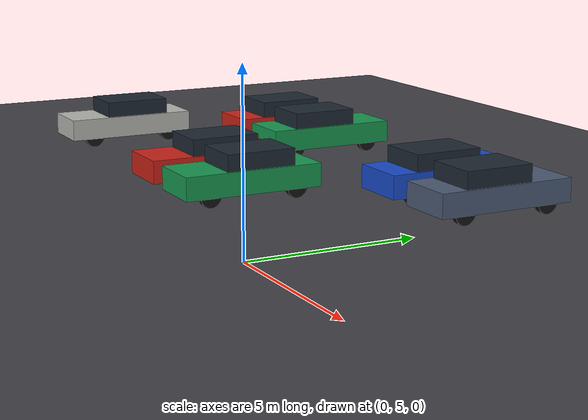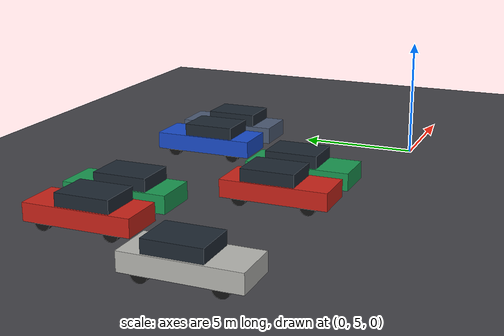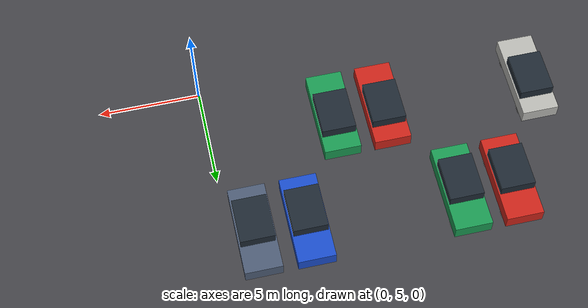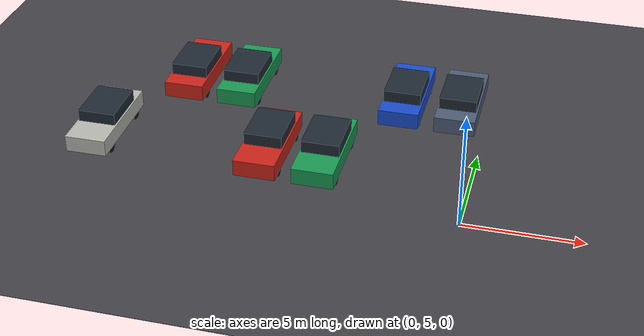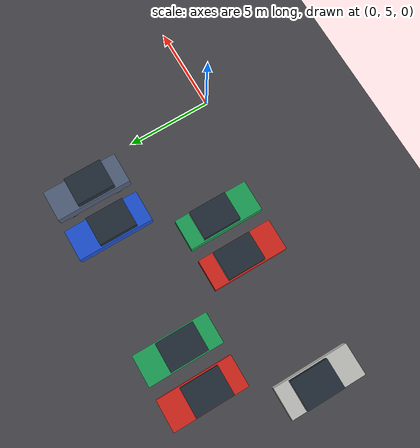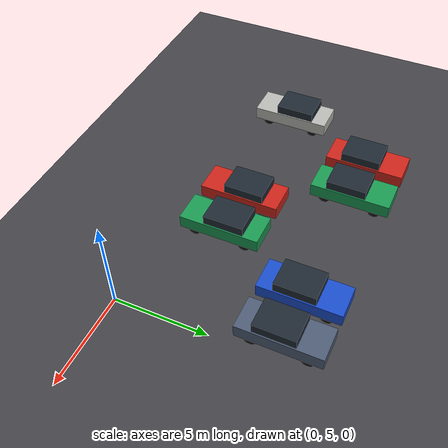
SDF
<sdf version="1.10">
 <world name="parking_lot">
  <model name="ground">
   <static>true</static>
   <link name="link">
    <collision name="c">
     <geometry><plane><normal>0 0 1</normal><size>78.0 70.1</size></plane></geometry>
     <surface><friction><ode><mu>1.0</mu><mu2>1.0</mu2></ode></friction></surface>
    </collision>
    <visual name="floor_vis">
     <pose>0.0000 0.0000 -0.0100 0 0 0.000000</pose>
     <geometry><box><size>58.0000 50.1000 0.0200</size></box></geometry>
     <material>
      <ambient>0.22 0.22 0.24 1</ambient>
      <diffuse>0.26 0.26 0.28 1</diffuse>
      <specular>0.1 0.1 0.1 1</specular>
     </material>
    </visual>
   </link>
  </model>
  <model name="parked_car_C01">
   <static>true</static>
   <pose>-16.2500 7.9500 0 0 0 -1.570796</pose>
   <link name="link">
    <collision name="body_col">
     <pose>0.0000 0.0000 0.6300 0 0 0.000000</pose>
     <geometry><box><size>4.4000 1.8000 0.7200</size></box></geometry>
    </collision>
    <visual name="body_vis">
     <pose>0.0000 0.0000 0.6300 0 0 0.000000</pose>
     <geometry><box><size>4.4000 1.8000 0.7200</size></box></geometry>
     <material>
      <ambient>0.55 0.55 0.53 1</ambient>
      <diffuse>0.72 0.72 0.70 1</diffuse>
      <specular>0.1 0.1 0.1 1</specular>
     </material>
    </visual>
    <collision name="cabin_col">
     <pose>-0.2500 0.0000 1.2500 0 0 0.000000</pose>
     <geometry><box><size>2.2000 1.6560 0.5200</size></box></geometry>
    </collision>
    <visual name="cabin_vis">
     <pose>-0.2500 0.0000 1.2500 0 0 0.000000</pose>
     <geometry><box><size>2.2000 1.6560 0.5200</size></box></geometry>
     <material>
      <ambient>0.06 0.08 0.10 1</ambient>
      <diffuse>0.12 0.16 0.20 1</diffuse>
      <specular>0.1 0.1 0.1 1</specular>
     </material>
    </visual>
    <collision name="w_fl_col">
     <pose>1.4080 0.7560 0.3300 1.5708 0 0</pose>
     <geometry><cylinder><radius>0.3300</radius><length>0.2200</length></cylinder></geometry>
    </collision>
    <visual name="w_fl_vis">
     <pose>1.4080 0.7560 0.3300 1.5708 0 0</pose>
     <geometry><cylinder><radius>0.3300</radius><length>0.2200</length></cylinder></geometry>
     <material>
      <ambient>0.03 0.03 0.03 1</ambient>
      <diffuse>0.08 0.08 0.08 1</diffuse>
      <specular>0.1 0.1 0.1 1</specular>
     </material>
    </visual>
    <collision name="w_fr_col">
     <pose>1.4080 -0.7560 0.3300 1.5708 0 0</pose>
     <geometry><cylinder><radius>0.3300</radius><length>0.2200</length></cylinder></geometry>
    </collision>
    <visual name="w_fr_vis">
     <pose>1.4080 -0.7560 0.3300 1.5708 0 0</pose>
     <geometry><cylinder><radius>0.3300</radius><length>0.2200</length></cylinder></geometry>
     <material>
      <ambient>0.03 0.03 0.03 1</ambient>
      <diffuse>0.08 0.08 0.08 1</diffuse>
      <specular>0.1 0.1 0.1 1</specular>
     </material>
    </visual>
    <collision name="w_rl_col">
     <pose>-1.4080 0.7560 0.3300 1.5708 0 0</pose>
     <geometry><cylinder><radius>0.3300</radius><length>0.2200</length></cylinder></geometry>
    </collision>
    <visual name="w_rl_vis">
     <pose>-1.4080 0.7560 0.3300 1.5708 0 0</pose>
     <geometry><cylinder><radius>0.3300</radius><length>0.2200</length></cylinder></geometry>
     <material>
      <ambient>0.03 0.03 0.03 1</ambient>
      <diffuse>0.08 0.08 0.08 1</diffuse>
      <specular>0.1 0.1 0.1 1</specular>
     </material>
    </visual>
    <collision name="w_rr_col">
     <pose>-1.4080 -0.7560 0.3300 1.5708 0 0</pose>
     <geometry><cylinder><radius>0.3300</radius><length>0.2200</length></cylinder></geometry>
    </collision>
    <visual name="w_rr_vis">
     <pose>-1.4080 -0.7560 0.3300 1.5708 0 0</pose>
     <geometry><cylinder><radius>0.3300</radius><length>0.2200</length></cylinder></geometry>
     <material>
      <ambient>0.03 0.03 0.03 1</ambient>
      <diffuse>0.08 0.08 0.08 1</diffuse>
      <specular>0.1 0.1 0.1 1</specular>
     </material>
    </visual>
   </link>
  </model>
  <model name="parked_car_C04">
   <static>true</static>
   <pose>-8.7500 7.9500 0 0 0 -1.570796</pose>
   <link name="link">
    <collision name="body_col">
     <pose>0.0000 0.0000 0.6300 0 0 0.000000</pose>
     <geometry><box><size>4.4000 1.8000 0.7200</size></box></geometry>
    </collision>
    <visual name="body_vis">
     <pose>0.0000 0.0000 0.6300 0 0 0.000000</pose>
     <geometry><box><size>4.4000 1.8000 0.7200</size></box></geometry>
     <material>
      <ambient>0.55 0.08 0.06 1</ambient>
      <diffuse>0.80 0.14 0.10 1</diffuse>
      <specular>0.1 0.1 0.1 1</specular>
     </material>
    </visual>
    <collision name="cabin_col">
     <pose>-0.2500 0.0000 1.2500 0 0 0.000000</pose>
     <geometry><box><size>2.2000 1.6560 0.5200</size></box></geometry>
    </collision>
    <visual name="cabin_vis">
     <pose>-0.2500 0.0000 1.2500 0 0 0.000000</pose>
     <geometry><box><size>2.2000 1.6560 0.5200</size></box></geometry>
     <material>
      <ambient>0.06 0.08 0.10 1</ambient>
      <diffuse>0.12 0.16 0.20 1</diffuse>
      <specular>0.1 0.1 0.1 1</specular>
     </material>
    </visual>
    <collision name="w_fl_col">
     <pose>1.4080 0.7560 0.3300 1.5708 0 0</pose>
     <geometry><cylinder><radius>0.3300</radius><length>0.2200</length></cylinder></geometry>
    </collision>
    <visual name="w_fl_vis">
     <pose>1.4080 0.7560 0.3300 1.5708 0 0</pose>
     <geometry><cylinder><radius>0.3300</radius><length>0.2200</length></cylinder></geometry>
     <material>
      <ambient>0.03 0.03 0.03 1</ambient>
      <diffuse>0.08 0.08 0.08 1</diffuse>
      <specular>0.1 0.1 0.1 1</specular>
     </material>
    </visual>
    <collision name="w_fr_col">
     <pose>1.4080 -0.7560 0.3300 1.5708 0 0</pose>
     <geometry><cylinder><radius>0.3300</radius><length>0.2200</length></cylinder></geometry>
    </collision>
    <visual name="w_fr_vis">
     <pose>1.4080 -0.7560 0.3300 1.5708 0 0</pose>
     <geometry><cylinder><radius>0.3300</radius><length>0.2200</length></cylinder></geometry>
     <material>
      <ambient>0.03 0.03 0.03 1</ambient>
      <diffuse>0.08 0.08 0.08 1</diffuse>
      <specular>0.1 0.1 0.1 1</specular>
     </material>
    </visual>
    <collision name="w_rl_col">
     <pose>-1.4080 0.7560 0.3300 1.5708 0 0</pose>
     <geometry><cylinder><radius>0.3300</radius><length>0.2200</length></cylinder></geometry>
    </collision>
    <visual name="w_rl_vis">
     <pose>-1.4080 0.7560 0.3300 1.5708 0 0</pose>
     <geometry><cylinder><radius>0.3300</radius><length>0.2200</length></cylinder></geometry>
     <material>
      <ambient>0.03 0.03 0.03 1</ambient>
      <diffuse>0.08 0.08 0.08 1</diffuse>
      <specular>0.1 0.1 0.1 1</specular>
     </material>
    </visual>
    <collision name="w_rr_col">
     <pose>-1.4080 -0.7560 0.3300 1.5708 0 0</pose>
     <geometry><cylinder><radius>0.3300</radius><length>0.2200</length></cylinder></geometry>
    </collision>
    <visual name="w_rr_vis">
     <pose>-1.4080 -0.7560 0.3300 1.5708 0 0</pose>
     <geometry><cylinder><radius>0.3300</radius><length>0.2200</length></cylinder></geometry>
     <material>
      <ambient>0.03 0.03 0.03 1</ambient>
      <diffuse>0.08 0.08 0.08 1</diffuse>
      <specular>0.1 0.1 0.1 1</specular>
     </material>
    </visual>
   </link>
  </model>
  <model name="parked_car_C05">
   <static>true</static>
   <pose>-6.2500 7.9500 0 0 0 -1.570796</pose>
   <link name="link">
    <collision name="body_col">
     <pose>0.0000 0.0000 0.6300 0 0 0.000000</pose>
     <geometry><box><size>4.4000 1.8000 0.7200</size></box></geometry>
    </collision>
    <visual name="body_vis">
     <pose>0.0000 0.0000 0.6300 0 0 0.000000</pose>
     <geometry><box><size>4.4000 1.8000 0.7200</size></box></geometry>
     <material>
      <ambient>0.05 0.35 0.18 1</ambient>
      <diffuse>0.10 0.60 0.32 1</diffuse>
      <specular>0.1 0.1 0.1 1</specular>
     </material>
    </visual>
    <collision name="cabin_col">
     <pose>-0.2500 0.0000 1.2500 0 0 0.000000</pose>
     <geometry><box><size>2.2000 1.6560 0.5200</size></box></geometry>
    </collision>
    <visual name="cabin_vis">
     <pose>-0.2500 0.0000 1.2500 0 0 0.000000</pose>
     <geometry><box><size>2.2000 1.6560 0.5200</size></box></geometry>
     <material>
      <ambient>0.06 0.08 0.10 1</ambient>
      <diffuse>0.12 0.16 0.20 1</diffuse>
      <specular>0.1 0.1 0.1 1</specular>
     </material>
    </visual>
    <collision name="w_fl_col">
     <pose>1.4080 0.7560 0.3300 1.5708 0 0</pose>
     <geometry><cylinder><radius>0.3300</radius><length>0.2200</length></cylinder></geometry>
    </collision>
    <visual name="w_fl_vis">
     <pose>1.4080 0.7560 0.3300 1.5708 0 0</pose>
     <geometry><cylinder><radius>0.3300</radius><length>0.2200</length></cylinder></geometry>
     <material>
      <ambient>0.03 0.03 0.03 1</ambient>
      <diffuse>0.08 0.08 0.08 1</diffuse>
      <specular>0.1 0.1 0.1 1</specular>
     </material>
    </visual>
    <collision name="w_fr_col">
     <pose>1.4080 -0.7560 0.3300 1.5708 0 0</pose>
     <geometry><cylinder><radius>0.3300</radius><length>0.2200</length></cylinder></geometry>
    </collision>
    <visual name="w_fr_vis">
     <pose>1.4080 -0.7560 0.3300 1.5708 0 0</pose>
     <geometry><cylinder><radius>0.3300</radius><length>0.2200</length></cylinder></geometry>
     <material>
      <ambient>0.03 0.03 0.03 1</ambient>
      <diffuse>0.08 0.08 0.08 1</diffuse>
      <specular>0.1 0.1 0.1 1</specular>
     </material>
    </visual>
    <collision name="w_rl_col">
     <pose>-1.4080 0.7560 0.3300 1.5708 0 0</pose>
     <geometry><cylinder><radius>0.3300</radius><length>0.2200</length></cylinder></geometry>
    </collision>
    <visual name="w_rl_vis">
     <pose>-1.4080 0.7560 0.3300 1.5708 0 0</pose>
     <geometry><cylinder><radius>0.3300</radius><length>0.2200</length></cylinder></geometry>
     <material>
      <ambient>0.03 0.03 0.03 1</ambient>
      <diffuse>0.08 0.08 0.08 1</diffuse>
      <specular>0.1 0.1 0.1 1</specular>
     </material>
    </visual>
    <collision name="w_rr_col">
     <pose>-1.4080 -0.7560 0.3300 1.5708 0 0</pose>
     <geometry><cylinder><radius>0.3300</radius><length>0.2200</length></cylinder></geometry>
    </collision>
    <visual name="w_rr_vis">
     <pose>-1.4080 -0.7560 0.3300 1.5708 0 0</pose>
     <geometry><cylinder><radius>0.3300</radius><length>0.2200</length></cylinder></geometry>
     <material>
      <ambient>0.03 0.03 0.03 1</ambient>
      <diffuse>0.08 0.08 0.08 1</diffuse>
      <specular>0.1 0.1 0.1 1</specular>
     </material>
    </visual>
   </link>
  </model>
  <model name="parked_car_D02">
   <static>true</static>
   <pose>-13.7500 13.3500 0 0 0 1.570796</pose>
   <link name="link">
    <collision name="body_col">
     <pose>0.0000 0.0000 0.6300 0 0 0.000000</pose>
     <geometry><box><size>4.4000 1.8000 0.7200</size></box></geometry>
    </collision>
    <visual name="body_vis">
     <pose>0.0000 0.0000 0.6300 0 0 0.000000</pose>
     <geometry><box><size>4.4000 1.8000 0.7200</size></box></geometry>
     <material>
      <ambient>0.55 0.08 0.06 1</ambient>
      <diffuse>0.80 0.14 0.10 1</diffuse>
      <specular>0.1 0.1 0.1 1</specular>
     </material>
    </visual>
    <collision name="cabin_col">
     <pose>-0.2500 0.0000 1.2500 0 0 0.000000</pose>
     <geometry><box><size>2.2000 1.6560 0.5200</size></box></geometry>
    </collision>
    <visual name="cabin_vis">
     <pose>-0.2500 0.0000 1.2500 0 0 0.000000</pose>
     <geometry><box><size>2.2000 1.6560 0.5200</size></box></geometry>
     <material>
      <ambient>0.06 0.08 0.10 1</ambient>
      <diffuse>0.12 0.16 0.20 1</diffuse>
      <specular>0.1 0.1 0.1 1</specular>
     </material>
    </visual>
    <collision name="w_fl_col">
     <pose>1.4080 0.7560 0.3300 1.5708 0 0</pose>
     <geometry><cylinder><radius>0.3300</radius><length>0.2200</length></cylinder></geometry>
    </collision>
    <visual name="w_fl_vis">
     <pose>1.4080 0.7560 0.3300 1.5708 0 0</pose>
     <geometry><cylinder><radius>0.3300</radius><length>0.2200</length></cylinder></geometry>
     <material>
      <ambient>0.03 0.03 0.03 1</ambient>
      <diffuse>0.08 0.08 0.08 1</diffuse>
      <specular>0.1 0.1 0.1 1</specular>
     </material>
    </visual>
    <collision name="w_fr_col">
     <pose>1.4080 -0.7560 0.3300 1.5708 0 0</pose>
     <geometry><cylinder><radius>0.3300</radius><length>0.2200</length></cylinder></geometry>
    </collision>
    <visual name="w_fr_vis">
     <pose>1.4080 -0.7560 0.3300 1.5708 0 0</pose>
     <geometry><cylinder><radius>0.3300</radius><length>0.2200</length></cylinder></geometry>
     <material>
      <ambient>0.03 0.03 0.03 1</ambient>
      <diffuse>0.08 0.08 0.08 1</diffuse>
      <specular>0.1 0.1 0.1 1</specular>
     </material>
    </visual>
    <collision name="w_rl_col">
     <pose>-1.4080 0.7560 0.3300 1.5708 0 0</pose>
     <geometry><cylinder><radius>0.3300</radius><length>0.2200</length></cylinder></geometry>
    </collision>
    <visual name="w_rl_vis">
     <pose>-1.4080 0.7560 0.3300 1.5708 0 0</pose>
     <geometry><cylinder><radius>0.3300</radius><length>0.2200</length></cylinder></geometry>
     <material>
      <ambient>0.03 0.03 0.03 1</ambient>
      <diffuse>0.08 0.08 0.08 1</diffuse>
      <specular>0.1 0.1 0.1 1</specular>
     </material>
    </visual>
    <collision name="w_rr_col">
     <pose>-1.4080 -0.7560 0.3300 1.5708 0 0</pose>
     <geometry><cylinder><radius>0.3300</radius><length>0.2200</length></cylinder></geometry>
    </collision>
    <visual name="w_rr_vis">
     <pose>-1.4080 -0.7560 0.3300 1.5708 0 0</pose>
     <geometry><cylinder><radius>0.3300</radius><length>0.2200</length></cylinder></geometry>
     <material>
      <ambient>0.03 0.03 0.03 1</ambient>
      <diffuse>0.08 0.08 0.08 1</diffuse>
      <specular>0.1 0.1 0.1 1</specular>
     </material>
    </visual>
   </link>
  </model>
  <model name="parked_car_D03">
   <static>true</static>
   <pose>-11.2500 13.3500 0 0 0 1.570796</pose>
   <link name="link">
    <collision name="body_col">
     <pose>0.0000 0.0000 0.6300 0 0 0.000000</pose>
     <geometry><box><size>4.4000 1.8000 0.7200</size></box></geometry>
    </collision>
    <visual name="body_vis">
     <pose>0.0000 0.0000 0.6300 0 0 0.000000</pose>
     <geometry><box><size>4.4000 1.8000 0.7200</size></box></geometry>
     <material>
      <ambient>0.05 0.35 0.18 1</ambient>
      <diffuse>0.10 0.60 0.32 1</diffuse>
      <specular>0.1 0.1 0.1 1</specular>
     </material>
    </visual>
    <collision name="cabin_col">
     <pose>-0.2500 0.0000 1.2500 0 0 0.000000</pose>
     <geometry><box><size>2.2000 1.6560 0.5200</size></box></geometry>
    </collision>
    <visual name="cabin_vis">
     <pose>-0.2500 0.0000 1.2500 0 0 0.000000</pose>
     <geometry><box><size>2.2000 1.6560 0.5200</size></box></geometry>
     <material>
      <ambient>0.06 0.08 0.10 1</ambient>
      <diffuse>0.12 0.16 0.20 1</diffuse>
      <specular>0.1 0.1 0.1 1</specular>
     </material>
    </visual>
    <collision name="w_fl_col">
     <pose>1.4080 0.7560 0.3300 1.5708 0 0</pose>
     <geometry><cylinder><radius>0.3300</radius><length>0.2200</length></cylinder></geometry>
    </collision>
    <visual name="w_fl_vis">
     <pose>1.4080 0.7560 0.3300 1.5708 0 0</pose>
     <geometry><cylinder><radius>0.3300</radius><length>0.2200</length></cylinder></geometry>
     <material>
      <ambient>0.03 0.03 0.03 1</ambient>
      <diffuse>0.08 0.08 0.08 1</diffuse>
      <specular>0.1 0.1 0.1 1</specular>
     </material>
    </visual>
    <collision name="w_fr_col">
     <pose>1.4080 -0.7560 0.3300 1.5708 0 0</pose>
     <geometry><cylinder><radius>0.3300</radius><length>0.2200</length></cylinder></geometry>
    </collision>
    <visual name="w_fr_vis">
     <pose>1.4080 -0.7560 0.3300 1.5708 0 0</pose>
     <geometry><cylinder><radius>0.3300</radius><length>0.2200</length></cylinder></geometry>
     <material>
      <ambient>0.03 0.03 0.03 1</ambient>
      <diffuse>0.08 0.08 0.08 1</diffuse>
      <specular>0.1 0.1 0.1 1</specular>
     </material>
    </visual>
    <collision name="w_rl_col">
     <pose>-1.4080 0.7560 0.3300 1.5708 0 0</pose>
     <geometry><cylinder><radius>0.3300</radius><length>0.2200</length></cylinder></geometry>
    </collision>
    <visual name="w_rl_vis">
     <pose>-1.4080 0.7560 0.3300 1.5708 0 0</pose>
     <geometry><cylinder><radius>0.3300</radius><length>0.2200</length></cylinder></geometry>
     <material>
      <ambient>0.03 0.03 0.03 1</ambient>
      <diffuse>0.08 0.08 0.08 1</diffuse>
      <specular>0.1 0.1 0.1 1</specular>
     </material>
    </visual>
    <collision name="w_rr_col">
     <pose>-1.4080 -0.7560 0.3300 1.5708 0 0</pose>
     <geometry><cylinder><radius>0.3300</radius><length>0.2200</length></cylinder></geometry>
    </collision>
    <visual name="w_rr_vis">
     <pose>-1.4080 -0.7560 0.3300 1.5708 0 0</pose>
     <geometry><cylinder><radius>0.3300</radius><length>0.2200</length></cylinder></geometry>
     <material>
      <ambient>0.03 0.03 0.03 1</ambient>
      <diffuse>0.08 0.08 0.08 1</diffuse>
      <specular>0.1 0.1 0.1 1</specular>
     </material>
    </visual>
   </link>
  </model>
  <model name="parked_car_D06">
   <static>true</static>
   <pose>-3.7500 13.3500 0 0 0 1.570796</pose>
   <link name="link">
    <collision name="body_col">
     <pose>0.0000 0.0000 0.6300 0 0 0.000000</pose>
     <geometry><box><size>4.4000 1.8000 0.7200</size></box></geometry>
    </collision>
    <visual name="body_vis">
     <pose>0.0000 0.0000 0.6300 0 0 0.000000</pose>
     <geometry><box><size>4.4000 1.8000 0.7200</size></box></geometry>
     <material>
      <ambient>0.06 0.18 0.55 1</ambient>
      <diffuse>0.10 0.30 0.80 1</diffuse>
      <specular>0.1 0.1 0.1 1</specular>
     </material>
    </visual>
    <collision name="cabin_col">
     <pose>-0.2500 0.0000 1.2500 0 0 0.000000</pose>
     <geometry><box><size>2.2000 1.6560 0.5200</size></box></geometry>
    </collision>
    <visual name="cabin_vis">
     <pose>-0.2500 0.0000 1.2500 0 0 0.000000</pose>
     <geometry><box><size>2.2000 1.6560 0.5200</size></box></geometry>
     <material>
      <ambient>0.06 0.08 0.10 1</ambient>
      <diffuse>0.12 0.16 0.20 1</diffuse>
      <specular>0.1 0.1 0.1 1</specular>
     </material>
    </visual>
    <collision name="w_fl_col">
     <pose>1.4080 0.7560 0.3300 1.5708 0 0</pose>
     <geometry><cylinder><radius>0.3300</radius><length>0.2200</length></cylinder></geometry>
    </collision>
    <visual name="w_fl_vis">
     <pose>1.4080 0.7560 0.3300 1.5708 0 0</pose>
     <geometry><cylinder><radius>0.3300</radius><length>0.2200</length></cylinder></geometry>
     <material>
      <ambient>0.03 0.03 0.03 1</ambient>
      <diffuse>0.08 0.08 0.08 1</diffuse>
      <specular>0.1 0.1 0.1 1</specular>
     </material>
    </visual>
    <collision name="w_fr_col">
     <pose>1.4080 -0.7560 0.3300 1.5708 0 0</pose>
     <geometry><cylinder><radius>0.3300</radius><length>0.2200</length></cylinder></geometry>
    </collision>
    <visual name="w_fr_vis">
     <pose>1.4080 -0.7560 0.3300 1.5708 0 0</pose>
     <geometry><cylinder><radius>0.3300</radius><length>0.2200</length></cylinder></geometry>
     <material>
      <ambient>0.03 0.03 0.03 1</ambient>
      <diffuse>0.08 0.08 0.08 1</diffuse>
      <specular>0.1 0.1 0.1 1</specular>
     </material>
    </visual>
    <collision name="w_rl_col">
     <pose>-1.4080 0.7560 0.3300 1.5708 0 0</pose>
     <geometry><cylinder><radius>0.3300</radius><length>0.2200</length></cylinder></geometry>
    </collision>
    <visual name="w_rl_vis">
     <pose>-1.4080 0.7560 0.3300 1.5708 0 0</pose>
     <geometry><cylinder><radius>0.3300</radius><length>0.2200</length></cylinder></geometry>
     <material>
      <ambient>0.03 0.03 0.03 1</ambient>
      <diffuse>0.08 0.08 0.08 1</diffuse>
      <specular>0.1 0.1 0.1 1</specular>
     </material>
    </visual>
    <collision name="w_rr_col">
     <pose>-1.4080 -0.7560 0.3300 1.5708 0 0</pose>
     <geometry><cylinder><radius>0.3300</radius><length>0.2200</length></cylinder></geometry>
    </collision>
    <visual name="w_rr_vis">
     <pose>-1.4080 -0.7560 0.3300 1.5708 0 0</pose>
     <geometry><cylinder><radius>0.3300</radius><length>0.2200</length></cylinder></geometry>
     <material>
      <ambient>0.03 0.03 0.03 1</ambient>
      <diffuse>0.08 0.08 0.08 1</diffuse>
      <specular>0.1 0.1 0.1 1</specular>
     </material>
    </visual>
   </link>
  </model>
  <model name="parked_car_D07">
   <static>true</static>
   <pose>-1.2500 13.3500 0 0 0 1.570796</pose>
   <link name="link">
    <collision name="body_col">
     <pose>0.0000 0.0000 0.6300 0 0 0.000000</pose>
     <geometry><box><size>4.4000 1.8000 0.7200</size></box></geometry>
    </collision>
    <visual name="body_vis">
     <pose>0.0000 0.0000 0.6300 0 0 0.000000</pose>
     <geometry><box><size>4.4000 1.8000 0.7200</size></box></geometry>
     <material>
      <ambient>0.10 0.12 0.16 1</ambient>
      <diffuse>0.30 0.36 0.46 1</diffuse>
      <specular>0.1 0.1 0.1 1</specular>
     </material>
    </visual>
    <collision name="cabin_col">
     <pose>-0.2500 0.0000 1.2500 0 0 0.000000</pose>
     <geometry><box><size>2.2000 1.6560 0.5200</size></box></geometry>
    </collision>
    <visual name="cabin_vis">
     <pose>-0.2500 0.0000 1.2500 0 0 0.000000</pose>
     <geometry><box><size>2.2000 1.6560 0.5200</size></box></geometry>
     <material>
      <ambient>0.06 0.08 0.10 1</ambient>
      <diffuse>0.12 0.16 0.20 1</diffuse>
      <specular>0.1 0.1 0.1 1</specular>
     </material>
    </visual>
    <collision name="w_fl_col">
     <pose>1.4080 0.7560 0.3300 1.5708 0 0</pose>
     <geometry><cylinder><radius>0.3300</radius><length>0.2200</length></cylinder></geometry>
    </collision>
    <visual name="w_fl_vis">
     <pose>1.4080 0.7560 0.3300 1.5708 0 0</pose>
     <geometry><cylinder><radius>0.3300</radius><length>0.2200</length></cylinder></geometry>
     <material>
      <ambient>0.03 0.03 0.03 1</ambient>
      <diffuse>0.08 0.08 0.08 1</diffuse>
      <specular>0.1 0.1 0.1 1</specular>
     </material>
    </visual>
    <collision name="w_fr_col">
     <pose>1.4080 -0.7560 0.3300 1.5708 0 0</pose>
     <geometry><cylinder><radius>0.3300</radius><length>0.2200</length></cylinder></geometry>
    </collision>
    <visual name="w_fr_vis">
     <pose>1.4080 -0.7560 0.3300 1.5708 0 0</pose>
     <geometry><cylinder><radius>0.3300</radius><length>0.2200</length></cylinder></geometry>
     <material>
      <ambient>0.03 0.03 0.03 1</ambient>
      <diffuse>0.08 0.08 0.08 1</diffuse>
      <specular>0.1 0.1 0.1 1</specular>
     </material>
    </visual>
    <collision name="w_rl_col">
     <pose>-1.4080 0.7560 0.3300 1.5708 0 0</pose>
     <geometry><cylinder><radius>0.3300</radius><length>0.2200</length></cylinder></geometry>
    </collision>
    <visual name="w_rl_vis">
     <pose>-1.4080 0.7560 0.3300 1.5708 0 0</pose>
     <geometry><cylinder><radius>0.3300</radius><length>0.2200</length></cylinder></geometry>
     <material>
      <ambient>0.03 0.03 0.03 1</ambient>
      <diffuse>0.08 0.08 0.08 1</diffuse>
      <specular>0.1 0.1 0.1 1</specular>
     </material>
    </visual>
    <collision name="w_rr_col">
     <pose>-1.4080 -0.7560 0.3300 1.5708 0 0</pose>
     <geometry><cylinder><radius>0.3300</radius><length>0.2200</length></cylinder></geometry>
    </collision>
    <visual name="w_rr_vis">
     <pose>-1.4080 -0.7560 0.3300 1.5708 0 0</pose>
     <geometry><cylinder><radius>0.3300</radius><length>0.2200</length></cylinder></geometry>
     <material>
      <ambient>0.03 0.03 0.03 1</ambient>
      <diffuse>0.08 0.08 0.08 1</diffuse>
      <specular>0.1 0.1 0.1 1</specular>
     </material>
    </visual>
   </link>
  </model>
 </world>
</sdf>
